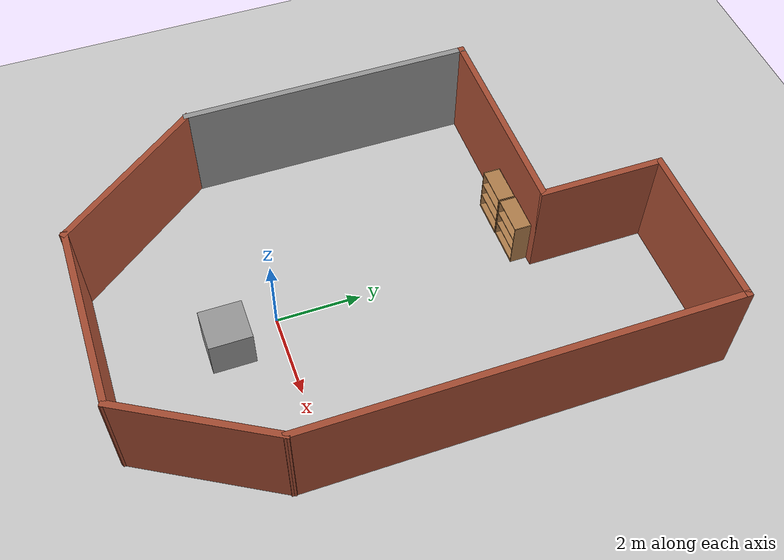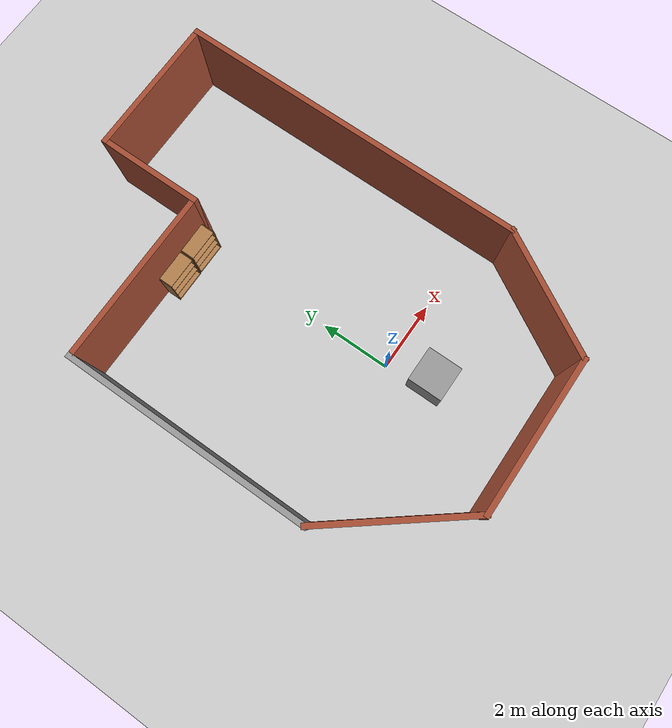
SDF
<sdf version="1.7">
 <world name="default">
  <light name="sun" type="directional">
   <pose>0 0 10 0 -0 0</pose>
   <diffuse>0.8 0.8 0.8 1</diffuse>
   <specular>0.2 0.2 0.2 1</specular>
   <attenuation>
    <range>1000</range>
    <constant>0.9</constant>
    <linear>0.01</linear>
    <quadratic>0.001</quadratic>
   </attenuation>
   <direction>-0.5 0.1 -0.9</direction>
   <spot><inner_angle>0</inner_angle><outer_angle>0</outer_angle><falloff>0</falloff></spot>
  </light>
  <model name="ground_plane">
   <static>1</static>
   <link name="link">
    <collision name="collision">
     <geometry><plane><normal>0 0 1</normal><size>100 100</size></plane></geometry>
     <surface>
      <contact><collide_bitmask>65535</collide_bitmask></contact>
      <friction><ode><mu>100</mu><mu2>50</mu2></ode></friction>
     </surface>
    </collision>
    <visual name="visual">
     <cast_shadows>0</cast_shadows>
     <geometry><plane><normal>0 0 1</normal><size>100 100</size></plane></geometry>
     <material>
      <script><uri>file://media/materials/scripts/gazebo.material</uri><name>Gazebo/Grey</name></script>
     </material>
    </visual>
   </link>
  </model>
  <gravity>0 0 -9.8</gravity>
  <magnetic_field>6e-06 2.3e-05 -4.2e-05</magnetic_field>
  <atmosphere type="adiabatic"/>
  <physics type="ode">
   <max_step_size>0.001</max_step_size>
   <real_time_factor>1</real_time_factor>
   <real_time_update_rate>1000</real_time_update_rate>
  </physics>
  <scene><ambient>0.4 0.4 0.4 1</ambient><background>0.7 0.7 0.7 1</background><shadows>1</shadows></scene>
  <spherical_coordinates>
   <surface_model>EARTH_WGS84</surface_model>
   <latitude_deg>0</latitude_deg>
   <longitude_deg>0</longitude_deg>
   <elevation>0</elevation>
   <heading_deg>0</heading_deg>
  </spherical_coordinates>
  <model name="Untitled">
   <pose>-0.154846 2.51681 0 0 -0 0</pose>
   <link name="Wall_1">
    <collision name="Wall_1_Collision">
     <geometry><box><size>7 0.15 2.5</size></box></geometry>
     <pose>0 0 1.25 0 -0 0</pose>
    </collision>
    <visual name="Wall_1_Visual">
     <pose>0 0 1.25 0 -0 0</pose>
     <geometry><box><size>7 0.15 2.5</size></box></geometry>
     <material>
      <script><uri>file://media/materials/scripts/gazebo.material</uri><name>Gazebo/Grey</name></script>
      <ambient>1 1 1 1</ambient>
     </material>
     <meta><layer>0</layer></meta>
    </visual>
    <pose>-4.34859 0.223979 0 0 -0 1.5708</pose>
   </link>
   <link name="Wall_2">
    <collision name="Wall_2_Collision">
     <geometry><box><size>5 0.15 2.5</size></box></geometry>
     <pose>0 0 1.25 0 -0 0</pose>
    </collision>
    <visual name="Wall_2_Visual">
     <pose>0 0 1.25 0 -0 0</pose>
     <geometry><box><size>5 0.15 2.5</size></box></geometry>
     <material>
      <script><uri>file://media/materials/scripts/gazebo.material</uri><name>Gazebo/Bricks</name></script>
      <ambient>1 1 1 1</ambient>
     </material>
     <meta><layer>0</layer></meta>
    </visual>
    <pose>-1.92359 3.64898 0 0 -0 0</pose>
   </link>
   <link name="Wall_3">
    <collision name="Wall_3_Collision">
     <geometry><box><size>3 0.15 2.5</size></box></geometry>
     <pose>0 0 1.25 0 -0 0</pose>
    </collision>
    <visual name="Wall_3_Visual">
     <pose>0 0 1.25 0 -0 0</pose>
     <geometry><box><size>3 0.15 2.5</size></box></geometry>
     <material>
      <script><uri>file://media/materials/scripts/gazebo.material</uri><name>Gazebo/Bricks</name></script>
      <ambient>1 1 1 1</ambient>
     </material>
     <meta><layer>0</layer></meta>
    </visual>
    <pose>0.501408 5.07398 0 0 -0 1.5708</pose>
   </link>
   <link name="Wall_4">
    <collision name="Wall_4_Collision">
     <geometry><box><size>4 0.15 2.5</size></box></geometry>
     <pose>0 0 1.25 0 -0 0</pose>
    </collision>
    <visual name="Wall_4_Visual">
     <pose>0 0 1.25 0 -0 0</pose>
     <geometry><box><size>4 0.15 2.5</size></box></geometry>
     <material>
      <script><uri>file://media/materials/scripts/gazebo.material</uri><name>Gazebo/Bricks</name></script>
      <ambient>1 1 1 1</ambient>
     </material>
     <meta><layer>0</layer></meta>
    </visual>
    <pose>2.42641 6.49898 0 0 -0 0</pose>
   </link>
   <link name="Wall_5">
    <collision name="Wall_5_Collision">
     <geometry><box><size>10 0.15 2.5</size></box></geometry>
     <pose>0 0 1.25 0 -0 0</pose>
    </collision>
    <visual name="Wall_5_Visual">
     <pose>0 0 1.25 0 -0 0</pose>
     <geometry><box><size>10 0.15 2.5</size></box></geometry>
     <material>
      <script><uri>file://media/materials/scripts/gazebo.material</uri><name>Gazebo/Bricks</name></script>
      <ambient>1 1 1 1</ambient>
     </material>
     <meta><layer>0</layer></meta>
    </visual>
    <pose>4.35141 1.57398 0 0 -0 -1.5708</pose>
   </link>
   <link name="Wall_6">
    <collision name="Wall_6_Collision">
     <geometry><box><size>3.75 0.15 2.5</size></box></geometry>
     <pose>0 0 1.25 0 -0 0</pose>
    </collision>
    <visual name="Wall_6_Visual">
     <pose>0 0 1.25 0 -0 0</pose>
     <geometry><box><size>3.75 0.15 2.5</size></box></geometry>
     <material>
      <script><uri>file://media/materials/scripts/gazebo.material</uri><name>Gazebo/Bricks</name></script>
      <ambient>1 1 1 1</ambient>
     </material>
     <meta><layer>0</layer></meta>
    </visual>
    <pose>3.45141 -4.90987 0 0 -0 -2.0944</pose>
   </link>
   <link name="Wall_7">
    <collision name="Wall_7_Collision">
     <geometry><box><size>4.5 0.15 2.5</size></box></geometry>
     <pose>0 0 1.25 0 -0 0</pose>
    </collision>
    <visual name="Wall_7_Visual">
     <pose>0 0 1.25 0 -0 0</pose>
     <geometry><box><size>4.5 0.15 2.5</size></box></geometry>
     <material>
      <script><uri>file://media/materials/scripts/gazebo.material</uri><name>Gazebo/Bricks</name></script>
      <ambient>1 1 1 1</ambient>
     </material>
     <meta><layer>0</layer></meta>
    </visual>
    <pose>0.376408 -6.46871 0 0 -0 3.14159</pose>
   </link>
   <link name="Wall_8">
    <collision name="Wall_8_Collision">
     <geometry><box><size>4.29491 0.15 2.5</size></box></geometry>
     <pose>0 0 1.25 0 -0 0</pose>
    </collision>
    <visual name="Wall_8_Visual">
     <pose>0 0 1.25 0 -0 0</pose>
     <geometry><box><size>4.29491 0.15 2.5</size></box></geometry>
     <material>
      <script><uri>file://media/materials/scripts/gazebo.material</uri><name>Gazebo/Bricks</name></script>
      <ambient>1 1 1 1</ambient>
     </material>
     <meta><layer>0</layer></meta>
    </visual>
    <pose>-3.07359 -4.83487 0 0 -0 2.23345</pose>
   </link>
   <static>1</static>
  </model>
  <model name="unit_box">
   <pose>0.388454 -1.20611 0.5 0 -0 0</pose>
   <link name="link">
    <inertial>
     <mass>1</mass>
     <inertia>
      <ixx>0.166667</ixx>
      <ixy>0</ixy>
      <ixz>0</ixz>
      <iyy>0.166667</iyy>
      <iyz>0</iyz>
      <izz>0.166667</izz>
     </inertia>
    </inertial>
    <collision name="collision"><geometry><box><size>1 1 1</size></box></geometry></collision>
    <visual name="visual">
     <geometry><box><size>1 1 1</size></box></geometry>
     <material>
      <script><name>Gazebo/Grey</name><uri>file://media/materials/scripts/gazebo.material</uri></script>
     </material>
    </visual>
   </link>
  </model>
  <model name="bookshelf">
   <static>1</static>
   <link name="link">
    <inertial><mass>1</mass></inertial>
    <collision name="back">
     <pose>0 0.005 0.6 0 -0 0</pose>
     <geometry><box><size>0.9 0.01 1.2</size></box></geometry>
    </collision>
    <visual name="visual1">
     <pose>0 0.005 0.6 0 -0 0</pose>
     <geometry><box><size>0.9 0.01 1.2</size></box></geometry>
     <material>
      <script><uri>file://media/materials/scripts/gazebo.material</uri><name>Gazebo/Wood</name></script>
     </material>
    </visual>
    <collision name="left_side">
     <pose>0.45 -0.195 0.6 0 -0 0</pose>
     <geometry><box><size>0.02 0.4 1.2</size></box></geometry>
    </collision>
    <visual name="visual2">
     <pose>0.45 -0.195 0.6 0 -0 0</pose>
     <geometry><box><size>0.02 0.4 1.2</size></box></geometry>
     <material>
      <script><uri>file://media/materials/scripts/gazebo.material</uri><name>Gazebo/Wood</name></script>
     </material>
    </visual>
    <collision name="right_side">
     <pose>-0.45 -0.195 0.6 0 -0 0</pose>
     <geometry><box><size>0.02 0.4 1.2</size></box></geometry>
    </collision>
    <visual name="visual3">
     <pose>-0.45 -0.195 0.6 0 -0 0</pose>
     <geometry><box><size>0.02 0.4 1.2</size></box></geometry>
     <material>
      <script><uri>file://media/materials/scripts/gazebo.material</uri><name>Gazebo/Wood</name></script>
     </material>
    </visual>
    <collision name="bottom">
     <pose>0 -0.195 0.03 0 -0 0</pose>
     <geometry><box><size>0.88 0.4 0.06</size></box></geometry>
    </collision>
    <visual name="visual4">
     <pose>0 -0.195 0.03 0 -0 0</pose>
     <geometry><box><size>0.88 0.4 0.06</size></box></geometry>
     <material>
      <script><uri>file://media/materials/scripts/gazebo.material</uri><name>Gazebo/Wood</name></script>
     </material>
    </visual>
    <collision name="top">
     <pose>0 -0.195 1.19 0 -0 0</pose>
     <geometry><box><size>0.88 0.4 0.02</size></box></geometry>
    </collision>
    <visual name="visual5">
     <pose>0 -0.195 1.19 0 -0 0</pose>
     <geometry><box><size>0.88 0.4 0.02</size></box></geometry>
     <material>
      <script><uri>file://media/materials/scripts/gazebo.material</uri><name>Gazebo/Wood</name></script>
     </material>
    </visual>
    <collision name="low_shelf">
     <pose>0 -0.195 0.43 0 -0 0</pose>
     <geometry><box><size>0.88 0.4 0.02</size></box></geometry>
    </collision>
    <visual name="visual6">
     <pose>0 -0.195 0.43 0 -0 0</pose>
     <geometry><box><size>0.88 0.4 0.02</size></box></geometry>
     <material>
      <script><uri>file://media/materials/scripts/gazebo.material</uri><name>Gazebo/Wood</name></script>
     </material>
    </visual>
    <collision name="high_shelf">
     <pose>0 -0.195 0.8 0 -0 0</pose>
     <geometry><box><size>0.88 0.4 0.02</size></box></geometry>
    </collision>
    <visual name="visual7">
     <pose>0 -0.195 0.8 0 -0 0</pose>
     <geometry><box><size>0.88 0.4 0.02</size></box></geometry>
     <material>
      <script><uri>file://media/materials/scripts/gazebo.material</uri><name>Gazebo/Wood</name></script>
     </material>
    </visual>
   </link>
   <pose>-0.257955 6.08196 0 0 -0 0</pose>
  </model>
  <model name="bookshelf_clone">
   <static>1</static>
   <link name="link">
    <inertial><mass>1</mass></inertial>
    <collision name="back">
     <pose>0 0.005 0.6 0 -0 0</pose>
     <geometry><box><size>0.9 0.01 1.2</size></box></geometry>
    </collision>
    <visual name="visual1">
     <pose>0 0.005 0.6 0 -0 0</pose>
     <geometry><box><size>0.9 0.01 1.2</size></box></geometry>
     <material>
      <script><uri>file://media/materials/scripts/gazebo.material</uri><name>Gazebo/Wood</name></script>
     </material>
    </visual>
    <collision name="left_side">
     <pose>0.45 -0.195 0.6 0 -0 0</pose>
     <geometry><box><size>0.02 0.4 1.2</size></box></geometry>
    </collision>
    <visual name="visual2">
     <pose>0.45 -0.195 0.6 0 -0 0</pose>
     <geometry><box><size>0.02 0.4 1.2</size></box></geometry>
     <material>
      <script><uri>file://media/materials/scripts/gazebo.material</uri><name>Gazebo/Wood</name></script>
     </material>
    </visual>
    <collision name="right_side">
     <pose>-0.45 -0.195 0.6 0 -0 0</pose>
     <geometry><box><size>0.02 0.4 1.2</size></box></geometry>
    </collision>
    <visual name="visual3">
     <pose>-0.45 -0.195 0.6 0 -0 0</pose>
     <geometry><box><size>0.02 0.4 1.2</size></box></geometry>
     <material>
      <script><uri>file://media/materials/scripts/gazebo.material</uri><name>Gazebo/Wood</name></script>
     </material>
    </visual>
    <collision name="bottom">
     <pose>0 -0.195 0.03 0 -0 0</pose>
     <geometry><box><size>0.88 0.4 0.06</size></box></geometry>
    </collision>
    <visual name="visual4">
     <pose>0 -0.195 0.03 0 -0 0</pose>
     <geometry><box><size>0.88 0.4 0.06</size></box></geometry>
     <material>
      <script><uri>file://media/materials/scripts/gazebo.material</uri><name>Gazebo/Wood</name></script>
     </material>
    </visual>
    <collision name="top">
     <pose>0 -0.195 1.19 0 -0 0</pose>
     <geometry><box><size>0.88 0.4 0.02</size></box></geometry>
    </collision>
    <visual name="visual5">
     <pose>0 -0.195 1.19 0 -0 0</pose>
     <geometry><box><size>0.88 0.4 0.02</size></box></geometry>
     <material>
      <script><uri>file://media/materials/scripts/gazebo.material</uri><name>Gazebo/Wood</name></script>
     </material>
    </visual>
    <collision name="low_shelf">
     <pose>0 -0.195 0.43 0 -0 0</pose>
     <geometry><box><size>0.88 0.4 0.02</size></box></geometry>
    </collision>
    <visual name="visual6">
     <pose>0 -0.195 0.43 0 -0 0</pose>
     <geometry><box><size>0.88 0.4 0.02</size></box></geometry>
     <material>
      <script><uri>file://media/materials/scripts/gazebo.material</uri><name>Gazebo/Wood</name></script>
     </material>
    </visual>
    <collision name="high_shelf">
     <pose>0 -0.195 0.8 0 -0 0</pose>
     <geometry><box><size>0.88 0.4 0.02</size></box></geometry>
    </collision>
    <visual name="visual7">
     <pose>0 -0.195 0.8 0 -0 0</pose>
     <geometry><box><size>0.88 0.4 0.02</size></box></geometry>
     <material>
      <script><uri>file://media/materials/scripts/gazebo.material</uri><name>Gazebo/Wood</name></script>
     </material>
    </visual>
   </link>
   <pose>-1.19324 6.07298 0 0 -0 0</pose>
  </model>
 </world>
</sdf>
